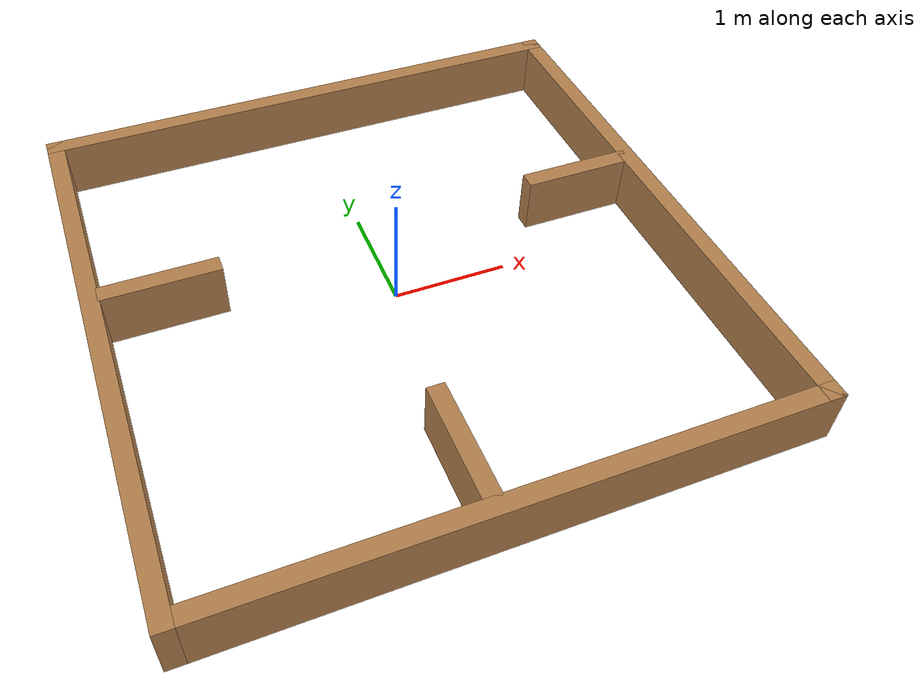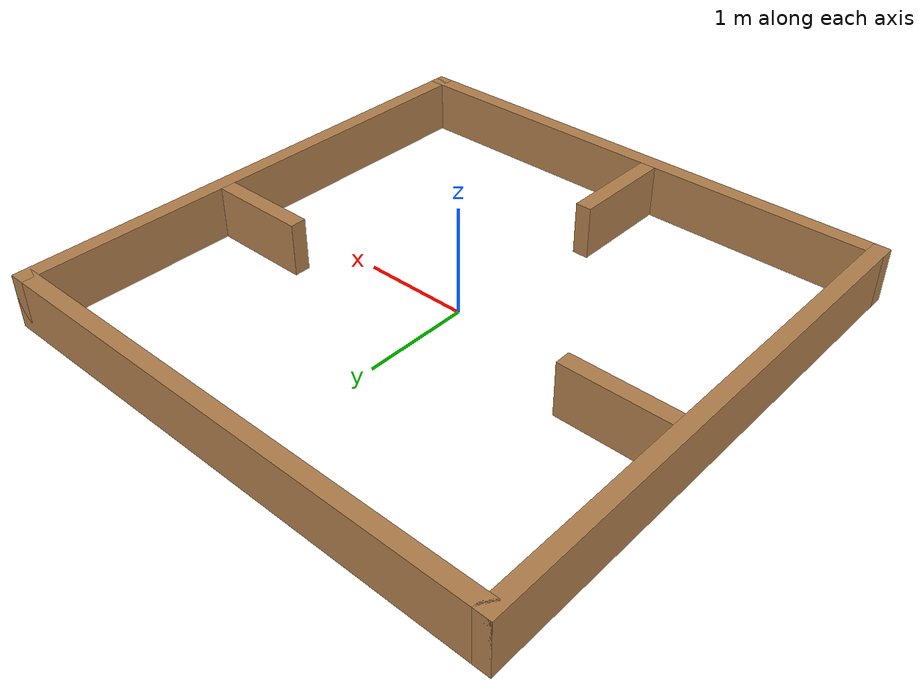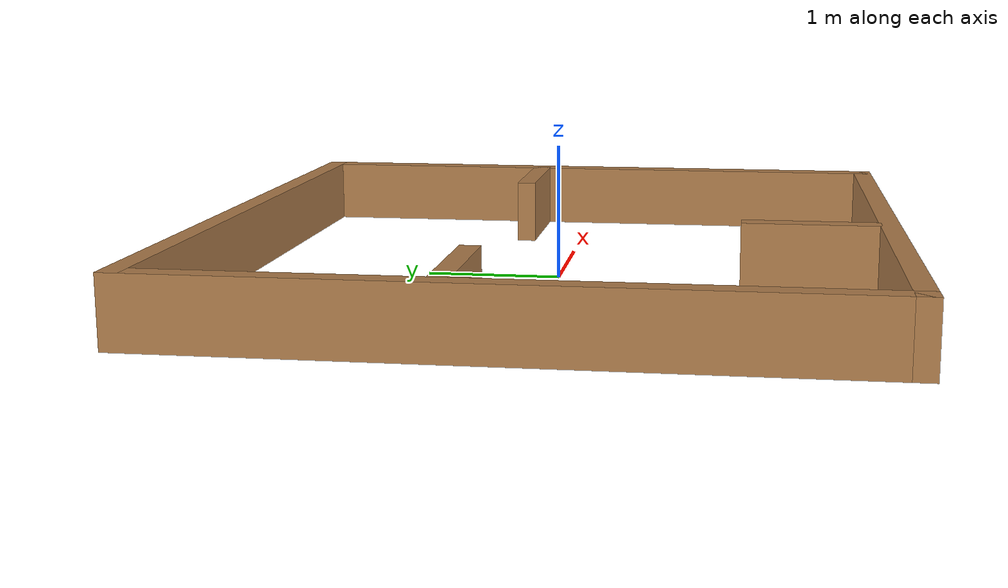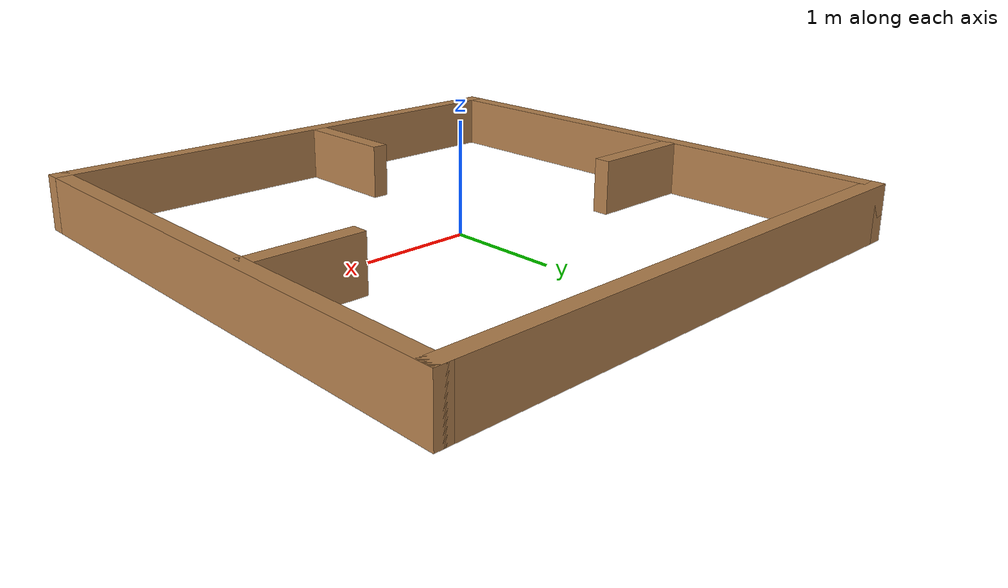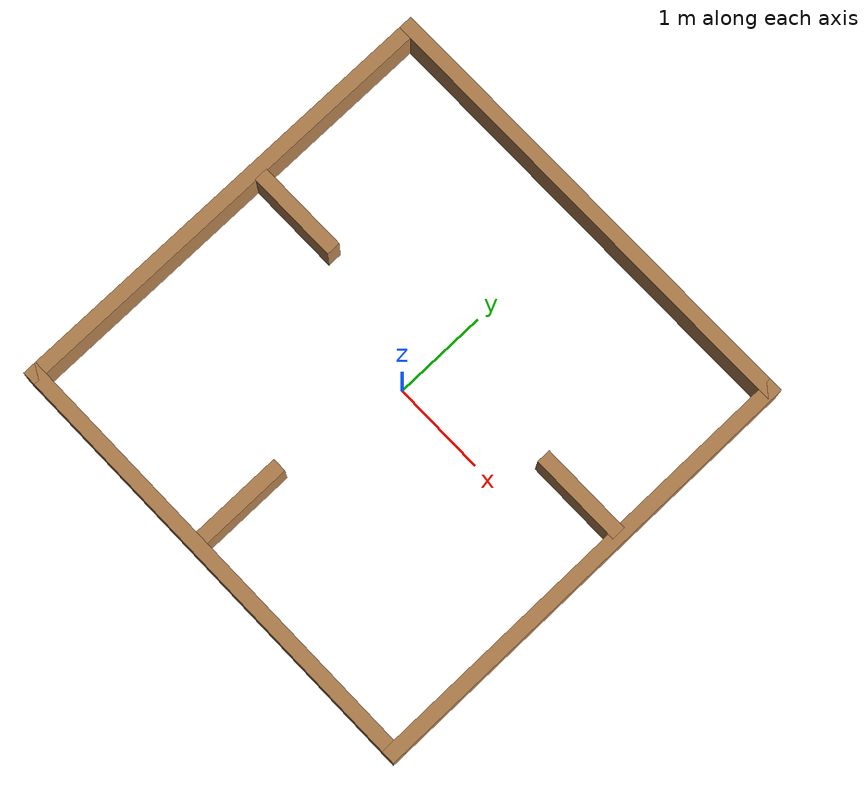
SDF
<?xml version='1.0'?>
<sdf version='1.6'>
  <model name='KGCOE_PreTrainingModel'>
    <link name='Wall_0'>
      <pose frame=''>-2.425 0 0 0 -0 1.5708</pose>
      <self_collide>0</self_collide>
      <enable_wind>0</enable_wind>
      <kinematic>0</kinematic>
      <visual name='Wall_0_Visual'>
        <pose frame=''>0 0 0.25 0 -0 0</pose>
        <geometry>
          <box>
            <size>5 0.15 0.5</size>
          </box>
        </geometry>
        <material>
          <script>
            <uri>file://media/materials/scripts/gazebo.material</uri>
            <name>Gazebo/Wood</name>
          </script>
          <ambient>1 1 1 1</ambient>
        </material>
        <transparency>0</transparency>
        <cast_shadows>1</cast_shadows>
      </visual>
      <collision name='Wall_0_Collision'>
        <laser_retro>0</laser_retro>
        <max_contacts>10</max_contacts>
        <pose frame=''>0 0 0.25 0 -0 0</pose>
        <geometry>
          <box>
            <size>5 0.15 0.5</size>
          </box>
        </geometry>
        <surface>
          <friction>
            <ode>
              <mu>1</mu>
              <mu2>1</mu2>
              <fdir1>0 0 0</fdir1>
              <slip1>0</slip1>
              <slip2>0</slip2>
            </ode>
            <torsional>
              <coefficient>1</coefficient>
              <patch_radius>0</patch_radius>
              <surface_radius>0</surface_radius>
              <use_patch_radius>1</use_patch_radius>
              <ode>
                <slip>0</slip>
              </ode>
            </torsional>
          </friction>
          <bounce>
            <restitution_coefficient>0</restitution_coefficient>
            <threshold>1e+06</threshold>
          </bounce>
          <contact>
            <collide_without_contact>0</collide_without_contact>
            <collide_without_contact_bitmask>1</collide_without_contact_bitmask>
            <collide_bitmask>1</collide_bitmask>
            <ode>
              <soft_cfm>0</soft_cfm>
              <soft_erp>0.2</soft_erp>
              <kp>1e+13</kp>
              <kd>1</kd>
              <max_vel>0.01</max_vel>
              <min_depth>0</min_depth>
            </ode>
            <bullet>
              <split_impulse>1</split_impulse>
              <split_impulse_penetration_threshold>-0.01</split_impulse_penetration_threshold>
              <soft_cfm>0</soft_cfm>
              <soft_erp>0.2</soft_erp>
              <kp>1e+13</kp>
              <kd>1</kd>
            </bullet>
          </contact>
        </surface>
      </collision>
    </link>
    <link name='Wall_13'>
      <pose frame=''>-0.22 -1.866 0 0 0 -1.5708</pose>
      <self_collide>0</self_collide>
      <enable_wind>0</enable_wind>
      <kinematic>0</kinematic>
      <visual name='Wall_13_Visual'>
        <pose frame=''>0 0 0.25 0 -0 0</pose>
        <geometry>
          <box>
            <size>1 0.15 0.5</size>
          </box>
        </geometry>
        <material>
          <script>
            <uri>file://media/materials/scripts/gazebo.material</uri>
            <name>Gazebo/Wood</name>
          </script>
          <ambient>1 1 1 1</ambient>
        </material>
        <transparency>0</transparency>
        <cast_shadows>1</cast_shadows>
      </visual>
      <collision name='Wall_13_Collision'>
        <laser_retro>0</laser_retro>
        <max_contacts>10</max_contacts>
        <pose frame=''>0 0 0.25 0 -0 0</pose>
        <geometry>
          <box>
            <size>1 0.15 0.5</size>
          </box>
        </geometry>
        <surface>
          <friction>
            <ode>
              <mu>1</mu>
              <mu2>1</mu2>
              <fdir1>0 0 0</fdir1>
              <slip1>0</slip1>
              <slip2>0</slip2>
            </ode>
            <torsional>
              <coefficient>1</coefficient>
              <patch_radius>0</patch_radius>
              <surface_radius>0</surface_radius>
              <use_patch_radius>1</use_patch_radius>
              <ode>
                <slip>0</slip>
              </ode>
            </torsional>
          </friction>
          <bounce>
            <restitution_coefficient>0</restitution_coefficient>
            <threshold>1e+06</threshold>
          </bounce>
          <contact>
            <collide_without_contact>0</collide_without_contact>
            <collide_without_contact_bitmask>1</collide_without_contact_bitmask>
            <collide_bitmask>1</collide_bitmask>
            <ode>
              <soft_cfm>0</soft_cfm>
              <soft_erp>0.2</soft_erp>
              <kp>1e+13</kp>
              <kd>1</kd>
              <max_vel>0.01</max_vel>
              <min_depth>0</min_depth>
            </ode>
            <bullet>
              <split_impulse>1</split_impulse>
              <split_impulse_penetration_threshold>-0.01</split_impulse_penetration_threshold>
              <soft_cfm>0</soft_cfm>
              <soft_erp>0.2</soft_erp>
              <kp>1e+13</kp>
              <kd>1</kd>
            </bullet>
          </contact>
        </surface>
      </collision>
    </link>
    <link name='Wall_19'>
      <pose frame=''>1.91128 0.4632 0 0 -0 0</pose>
      <self_collide>0</self_collide>
      <enable_wind>0</enable_wind>
      <kinematic>0</kinematic>
      <visual name='Wall_19_Visual'>
        <pose frame=''>0 0 0.25 0 -0 0</pose>
        <geometry>
          <box>
            <size>1 0.15 0.5</size>
          </box>
        </geometry>
        <material>
          <script>
            <uri>file://media/materials/scripts/gazebo.material</uri>
            <name>Gazebo/Wood</name>
          </script>
          <ambient>1 1 1 1</ambient>
        </material>
        <transparency>0</transparency>
        <cast_shadows>1</cast_shadows>
      </visual>
      <collision name='Wall_19_Collision'>
        <laser_retro>0</laser_retro>
        <max_contacts>10</max_contacts>
        <pose frame=''>0 0 0.25 0 -0 0</pose>
        <geometry>
          <box>
            <size>1 0.15 0.5</size>
          </box>
        </geometry>
        <surface>
          <friction>
            <ode>
              <mu>1</mu>
              <mu2>1</mu2>
              <fdir1>0 0 0</fdir1>
              <slip1>0</slip1>
              <slip2>0</slip2>
            </ode>
            <torsional>
              <coefficient>1</coefficient>
              <patch_radius>0</patch_radius>
              <surface_radius>0</surface_radius>
              <use_patch_radius>1</use_patch_radius>
              <ode>
                <slip>0</slip>
              </ode>
            </torsional>
          </friction>
          <bounce>
            <restitution_coefficient>0</restitution_coefficient>
            <threshold>1e+06</threshold>
          </bounce>
          <contact>
            <collide_without_contact>0</collide_without_contact>
            <collide_without_contact_bitmask>1</collide_without_contact_bitmask>
            <collide_bitmask>1</collide_bitmask>
            <ode>
              <soft_cfm>0</soft_cfm>
              <soft_erp>0.2</soft_erp>
              <kp>1e+13</kp>
              <kd>1</kd>
              <max_vel>0.01</max_vel>
              <min_depth>0</min_depth>
            </ode>
            <bullet>
              <split_impulse>1</split_impulse>
              <split_impulse_penetration_threshold>-0.01</split_impulse_penetration_threshold>
              <soft_cfm>0</soft_cfm>
              <soft_erp>0.2</soft_erp>
              <kp>1e+13</kp>
              <kd>1</kd>
            </bullet>
          </contact>
        </surface>
      </collision>
    </link>
    <link name='Wall_2'>
      <pose frame=''>0 2.425 0 0 -0 0</pose>
      <self_collide>0</self_collide>
      <enable_wind>0</enable_wind>
      <kinematic>0</kinematic>
      <visual name='Wall_2_Visual'>
        <pose frame=''>0 0 0.25 0 -0 0</pose>
        <geometry>
          <box>
            <size>5 0.15 0.5</size>
          </box>
        </geometry>
        <material>
          <script>
            <uri>file://media/materials/scripts/gazebo.material</uri>
            <name>Gazebo/Wood</name>
          </script>
          <ambient>1 1 1 1</ambient>
        </material>
        <transparency>0</transparency>
        <cast_shadows>1</cast_shadows>
      </visual>
      <collision name='Wall_2_Collision'>
        <laser_retro>0</laser_retro>
        <max_contacts>10</max_contacts>
        <pose frame=''>0 0 0.25 0 -0 0</pose>
        <geometry>
          <box>
            <size>5 0.15 0.5</size>
          </box>
        </geometry>
        <surface>
          <friction>
            <ode>
              <mu>1</mu>
              <mu2>1</mu2>
              <fdir1>0 0 0</fdir1>
              <slip1>0</slip1>
              <slip2>0</slip2>
            </ode>
            <torsional>
              <coefficient>1</coefficient>
              <patch_radius>0</patch_radius>
              <surface_radius>0</surface_radius>
              <use_patch_radius>1</use_patch_radius>
              <ode>
                <slip>0</slip>
              </ode>
            </torsional>
          </friction>
          <bounce>
            <restitution_coefficient>0</restitution_coefficient>
            <threshold>1e+06</threshold>
          </bounce>
          <contact>
            <collide_without_contact>0</collide_without_contact>
            <collide_without_contact_bitmask>1</collide_without_contact_bitmask>
            <collide_bitmask>1</collide_bitmask>
            <ode>
              <soft_cfm>0</soft_cfm>
              <soft_erp>0.2</soft_erp>
              <kp>1e+13</kp>
              <kd>1</kd>
              <max_vel>0.01</max_vel>
              <min_depth>0</min_depth>
            </ode>
            <bullet>
              <split_impulse>1</split_impulse>
              <split_impulse_penetration_threshold>-0.01</split_impulse_penetration_threshold>
              <soft_cfm>0</soft_cfm>
              <soft_erp>0.2</soft_erp>
              <kp>1e+13</kp>
              <kd>1</kd>
            </bullet>
          </contact>
        </surface>
      </collision>
    </link>
    <link name='Wall_3'>
      <pose frame=''>2.425 0 0 0 0 -1.5708</pose>
      <self_collide>0</self_collide>
      <enable_wind>0</enable_wind>
      <kinematic>0</kinematic>
      <visual name='Wall_3_Visual'>
        <pose frame=''>0 0 0.25 0 -0 0</pose>
        <geometry>
          <box>
            <size>5 0.15 0.5</size>
          </box>
        </geometry>
        <material>
          <script>
            <uri>file://media/materials/scripts/gazebo.material</uri>
            <name>Gazebo/Wood</name>
          </script>
          <ambient>1 1 1 1</ambient>
        </material>
        <transparency>0</transparency>
        <cast_shadows>1</cast_shadows>
      </visual>
      <collision name='Wall_3_Collision'>
        <laser_retro>0</laser_retro>
        <max_contacts>10</max_contacts>
        <pose frame=''>0 0 0.25 0 -0 0</pose>
        <geometry>
          <box>
            <size>5 0.15 0.5</size>
          </box>
        </geometry>
        <surface>
          <friction>
            <ode>
              <mu>1</mu>
              <mu2>1</mu2>
              <fdir1>0 0 0</fdir1>
              <slip1>0</slip1>
              <slip2>0</slip2>
            </ode>
            <torsional>
              <coefficient>1</coefficient>
              <patch_radius>0</patch_radius>
              <surface_radius>0</surface_radius>
              <use_patch_radius>1</use_patch_radius>
              <ode>
                <slip>0</slip>
              </ode>
            </torsional>
          </friction>
          <bounce>
            <restitution_coefficient>0</restitution_coefficient>
            <threshold>1e+06</threshold>
          </bounce>
          <contact>
            <collide_without_contact>0</collide_without_contact>
            <collide_without_contact_bitmask>1</collide_without_contact_bitmask>
            <collide_bitmask>1</collide_bitmask>
            <ode>
              <soft_cfm>0</soft_cfm>
              <soft_erp>0.2</soft_erp>
              <kp>1e+13</kp>
              <kd>1</kd>
              <max_vel>0.01</max_vel>
              <min_depth>0</min_depth>
            </ode>
            <bullet>
              <split_impulse>1</split_impulse>
              <split_impulse_penetration_threshold>-0.01</split_impulse_penetration_threshold>
              <soft_cfm>0</soft_cfm>
              <soft_erp>0.2</soft_erp>
              <kp>1e+13</kp>
              <kd>1</kd>
            </bullet>
          </contact>
        </surface>
      </collision>
    </link>
    <link name='Wall_4'>
      <pose frame=''>0 -2.425 0 0 -0 3.14159</pose>
      <self_collide>0</self_collide>
      <enable_wind>0</enable_wind>
      <kinematic>0</kinematic>
      <visual name='Wall_4_Visual'>
        <pose frame=''>0 0 0.25 0 -0 0</pose>
        <geometry>
          <box>
            <size>5 0.15 0.5</size>
          </box>
        </geometry>
        <material>
          <script>
            <uri>file://media/materials/scripts/gazebo.material</uri>
            <name>Gazebo/Wood</name>
          </script>
          <ambient>1 1 1 1</ambient>
        </material>
        <transparency>0</transparency>
        <cast_shadows>1</cast_shadows>
      </visual>
      <collision name='Wall_4_Collision'>
        <laser_retro>0</laser_retro>
        <max_contacts>10</max_contacts>
        <pose frame=''>0 0 0.25 0 -0 0</pose>
        <geometry>
          <box>
            <size>5 0.15 0.5</size>
          </box>
        </geometry>
        <surface>
          <friction>
            <ode>
              <mu>1</mu>
              <mu2>1</mu2>
              <fdir1>0 0 0</fdir1>
              <slip1>0</slip1>
              <slip2>0</slip2>
            </ode>
            <torsional>
              <coefficient>1</coefficient>
              <patch_radius>0</patch_radius>
              <surface_radius>0</surface_radius>
              <use_patch_radius>1</use_patch_radius>
              <ode>
                <slip>0</slip>
              </ode>
            </torsional>
          </friction>
          <bounce>
            <restitution_coefficient>0</restitution_coefficient>
            <threshold>1e+06</threshold>
          </bounce>
          <contact>
            <collide_without_contact>0</collide_without_contact>
            <collide_without_contact_bitmask>1</collide_without_contact_bitmask>
            <collide_bitmask>1</collide_bitmask>
            <ode>
              <soft_cfm>0</soft_cfm>
              <soft_erp>0.2</soft_erp>
              <kp>1e+13</kp>
              <kd>1</kd>
              <max_vel>0.01</max_vel>
              <min_depth>0</min_depth>
            </ode>
            <bullet>
              <split_impulse>1</split_impulse>
              <split_impulse_penetration_threshold>-0.01</split_impulse_penetration_threshold>
              <soft_cfm>0</soft_cfm>
              <soft_erp>0.2</soft_erp>
              <kp>1e+13</kp>
              <kd>1</kd>
            </bullet>
          </contact>
        </surface>
      </collision>
    </link>
    <link name='Wall_7'>
      <pose frame=''>-1.864 0.408 0 0 -0 0</pose>
      <self_collide>0</self_collide>
      <enable_wind>0</enable_wind>
      <kinematic>0</kinematic>
      <gravity>1</gravity>
      <inertial>
        <mass>1</mass>
        <pose frame=''>0 0 0 0 -0 0</pose>
        <inertia>
          <ixx>1</ixx>
          <ixy>0</ixy>
          <ixz>0</ixz>
          <iyy>1</iyy>
          <iyz>0</iyz>
          <izz>1</izz>
        </inertia>
      </inertial>
      <visual name='Wall_7_Visual'>
        <pose frame=''>0 0 0.25 0 -0 0</pose>
        <geometry>
          <box>
            <size>1 0.15 0.5</size>
          </box>
        </geometry>
        <material>
          <script>
            <uri>file://media/materials/scripts/gazebo.material</uri>
            <name>Gazebo/Wood</name>
          </script>
          <ambient>1 1 1 1</ambient>
          <shader type='vertex'>
            <normal_map>__default__</normal_map>
          </shader>
          <diffuse>1 1 1 1</diffuse>
          <specular>0.2 0.2 0.2 1</specular>
          <emissive>0 0 0 1</emissive>
        </material>
        <transparency>0</transparency>
        <cast_shadows>1</cast_shadows>
      </visual>
      <collision name='Wall_7_Collision'>
        <laser_retro>0</laser_retro>
        <max_contacts>10</max_contacts>
        <pose frame=''>0 0 0.25 0 -0 0</pose>
        <geometry>
          <box>
            <size>1 0.15 0.5</size>
          </box>
        </geometry>
        <surface>
          <friction>
            <ode>
              <mu>1</mu>
              <mu2>1</mu2>
              <fdir1>0 0 0</fdir1>
              <slip1>0</slip1>
              <slip2>0</slip2>
            </ode>
            <torsional>
              <coefficient>1</coefficient>
              <patch_radius>0</patch_radius>
              <surface_radius>0</surface_radius>
              <use_patch_radius>1</use_patch_radius>
              <ode>
                <slip>0</slip>
              </ode>
            </torsional>
          </friction>
          <bounce>
            <restitution_coefficient>0</restitution_coefficient>
            <threshold>1e+06</threshold>
          </bounce>
          <contact>
            <collide_without_contact>0</collide_without_contact>
            <collide_without_contact_bitmask>1</collide_without_contact_bitmask>
            <collide_bitmask>1</collide_bitmask>
            <ode>
              <soft_cfm>0</soft_cfm>
              <soft_erp>0.2</soft_erp>
              <kp>1e+13</kp>
              <kd>1</kd>
              <max_vel>0.01</max_vel>
              <min_depth>0</min_depth>
            </ode>
            <bullet>
              <split_impulse>1</split_impulse>
              <split_impulse_penetration_threshold>-0.01</split_impulse_penetration_threshold>
              <soft_cfm>0</soft_cfm>
              <soft_erp>0.2</soft_erp>
              <kp>1e+13</kp>
              <kd>1</kd>
            </bullet>
          </contact>
        </surface>
      </collision>
    </link>
    <static>1</static>
    <allow_auto_disable>1</allow_auto_disable>
  </model>
</sdf>
